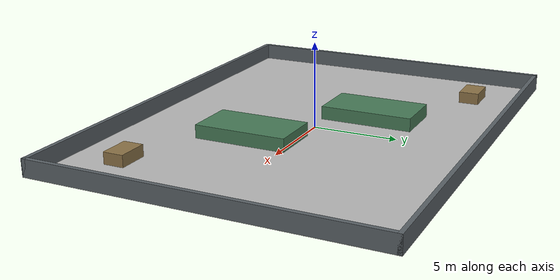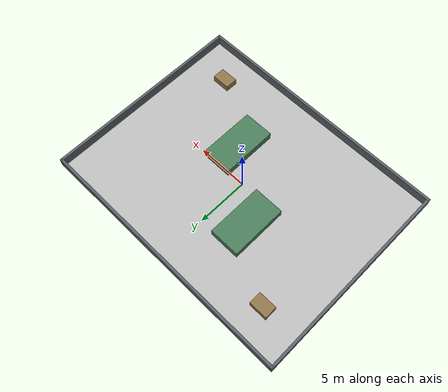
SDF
<?xml version="1.0"?>
<sdf version="1.6">
  <world name="default">
    <gravity>0 0 -9.8</gravity>
    <physics name="default_physics" type="ode">
      <max_step_size>0.002</max_step_size>
      <real_time_factor>1</real_time_factor>
      <real_time_update_rate>500</real_time_update_rate>
    </physics>
    <include><uri>model://sun</uri></include>
    <model name="ground_plane">
      <static>true</static>
      <link name="link">
        <collision name="collision">
          <geometry><box><size>26.000 20.000 0.02</size></box></geometry>
        </collision>
        <visual name="visual">
          <geometry><box><size>26.000 20.000 0.02</size></box></geometry>
          <material>
            <ambient>0.72 0.72 0.72 1</ambient>
            <diffuse>0.72 0.72 0.72 1</diffuse>
          </material>
        </visual>
      </link>
    </model>

    <model name="wall_north">
      <static>true</static>
      <pose>0.000 9.875 0.500 0 0 0</pose>
      <link name="link">
        <collision name="collision">
          <geometry><box><size>26.000 0.250 1.000</size></box></geometry>
        </collision>
        <visual name="visual">
          <geometry><box><size>26.000 0.250 1.000</size></box></geometry>
          <material>
            <ambient>0.35 0.38 0.40 1</ambient>
            <diffuse>0.35 0.38 0.40 1</diffuse>
          </material>
        </visual>
      </link>
    </model>

    <model name="wall_south">
      <static>true</static>
      <pose>0.000 -9.875 0.500 0 0 0</pose>
      <link name="link">
        <collision name="collision">
          <geometry><box><size>26.000 0.250 1.000</size></box></geometry>
        </collision>
        <visual name="visual">
          <geometry><box><size>26.000 0.250 1.000</size></box></geometry>
          <material>
            <ambient>0.35 0.38 0.40 1</ambient>
            <diffuse>0.35 0.38 0.40 1</diffuse>
          </material>
        </visual>
      </link>
    </model>

    <model name="wall_west">
      <static>true</static>
      <pose>-12.875 0.000 0.500 0 0 0</pose>
      <link name="link">
        <collision name="collision">
          <geometry><box><size>0.250 20.000 1.000</size></box></geometry>
        </collision>
        <visual name="visual">
          <geometry><box><size>0.250 20.000 1.000</size></box></geometry>
          <material>
            <ambient>0.35 0.38 0.40 1</ambient>
            <diffuse>0.35 0.38 0.40 1</diffuse>
          </material>
        </visual>
      </link>
    </model>

    <model name="wall_east">
      <static>true</static>
      <pose>12.875 0.000 0.500 0 0 0</pose>
      <link name="link">
        <collision name="collision">
          <geometry><box><size>0.250 20.000 1.000</size></box></geometry>
        </collision>
        <visual name="visual">
          <geometry><box><size>0.250 20.000 1.000</size></box></geometry>
          <material>
            <ambient>0.35 0.38 0.40 1</ambient>
            <diffuse>0.35 0.38 0.40 1</diffuse>
          </material>
        </visual>
      </link>
    </model>

    <model name="chicane_planter_west">
      <static>true</static>
      <pose>-3.000 2.500 0.400 0 0 0</pose>
      <link name="link">
        <collision name="collision">
          <geometry><box><size>3.000 5.500 0.800</size></box></geometry>
        </collision>
        <visual name="visual">
          <geometry><box><size>3.000 5.500 0.800</size></box></geometry>
          <material>
            <ambient>0.28 0.48 0.34 1</ambient>
            <diffuse>0.28 0.48 0.34 1</diffuse>
          </material>
        </visual>
      </link>
    </model>

    <model name="chicane_planter_east">
      <static>true</static>
      <pose>3.000 -2.500 0.400 0 0 0</pose>
      <link name="link">
        <collision name="collision">
          <geometry><box><size>3.000 5.500 0.800</size></box></geometry>
        </collision>
        <visual name="visual">
          <geometry><box><size>3.000 5.500 0.800</size></box></geometry>
          <material>
            <ambient>0.28 0.48 0.34 1</ambient>
            <diffuse>0.28 0.48 0.34 1</diffuse>
          </material>
        </visual>
      </link>
    </model>

    <model name="chicane_island_nw">
      <static>true</static>
      <pose>-9.000 6.800 0.350 0 0 0</pose>
      <link name="link">
        <collision name="collision">
          <geometry><box><size>1.800 1.200 0.700</size></box></geometry>
        </collision>
        <visual name="visual">
          <geometry><box><size>1.800 1.200 0.700</size></box></geometry>
          <material>
            <ambient>0.55 0.45 0.28 1</ambient>
            <diffuse>0.55 0.45 0.28 1</diffuse>
          </material>
        </visual>
      </link>
    </model>

    <model name="chicane_island_se">
      <static>true</static>
      <pose>9.000 -6.800 0.350 0 0 0</pose>
      <link name="link">
        <collision name="collision">
          <geometry><box><size>1.800 1.200 0.700</size></box></geometry>
        </collision>
        <visual name="visual">
          <geometry><box><size>1.800 1.200 0.700</size></box></geometry>
          <material>
            <ambient>0.55 0.45 0.28 1</ambient>
            <diffuse>0.55 0.45 0.28 1</diffuse>
          </material>
        </visual>
      </link>
    </model>
  </world>
</sdf>
